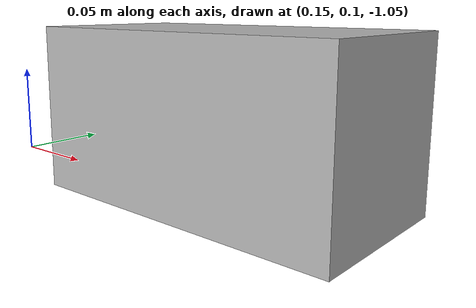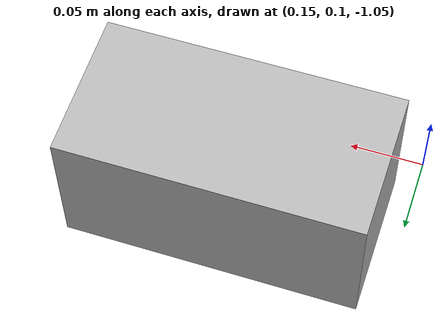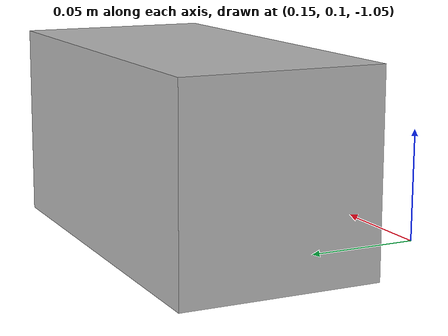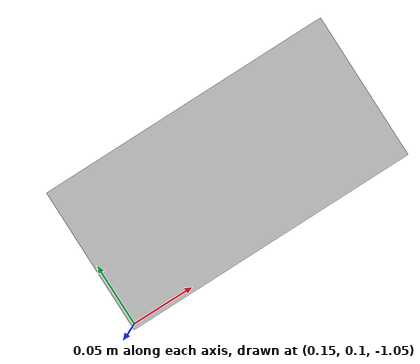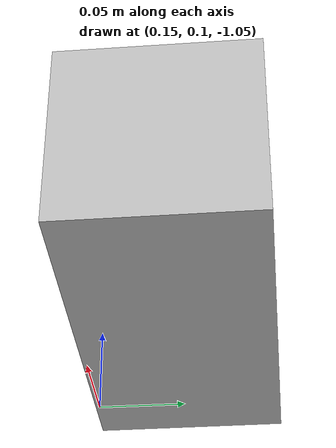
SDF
<?xml version="1.0"?>
<sdf version="1.4">
    <model name="IPON">
      <pose>0 0 0.5 0 0 0</pose>
      <link name="link">
      <gravity>0</gravity>
          <inertial>
        <mass>0.5</mass>
        <inertia>
          <ixx>0.0005291667</ixx>
          <ixy>-0</ixy>
          <ixz>0</ixz>
          <iyy>0.0005291667</iyy>
          <iyz>0</iyz>
          <izz>0.000225</izz>
        </inertia>
      </inertial>
        <visual name="visual">
	<pose>0 0 0 0 0 0 </pose>
        <geometry>
	<cylinder>
	 <radius>.03</radius>
	 <length>.01</length>
	</cylinder>
	</geometry>
	<material>
		<ambient>15 74 47 1</ambient>
		<diffuse>15 74 47 1</diffuse>
		<specular>0.1 0.1 0.1 1</specular>
		<emissive>0 0 0 0</emissive>
	</material>
        </visual>

        <visual name="visual">
	<pose>0.266 0.155 -1.523 0 0 0 </pose>
        <geometry>
	<box>
	 <size>.2 .1 .1</size>
	</box>
	</geometry>
        </visual>

      <sensor name='imu_component' type='imu'>
	 <pose>0.0 0.0 0.0 0.0 0.0 0.0</pose>
	<imu>
	  <topic>ODED</topic>
	</imu>
	<always_on>1</always_on>
	<update_rate>30</update_rate>
	<visualize>1</visualize>

      </sensor>

      </link>

    <plugin name="IPON" filename="libIPON.so">
      <gps_ant_link_name>IPON::link</gps_ant_link_name>
      <imu_unit_name>imu_component</imu_unit_name>
      <start_latitude>32.0017573</start_latitude>
      <start_longitude>34.9083871</start_longitude>
      <frequency>100</frequency>
      <Delay>0.00</Delay>
      <IP>127.0.0.1</IP> <!-- IP used for pure simulated tests (everything runs on the same comp) -->
     <!-- real IP used for HIL simulation (real laptops) -->

    </plugin>
    </model>
</sdf>
